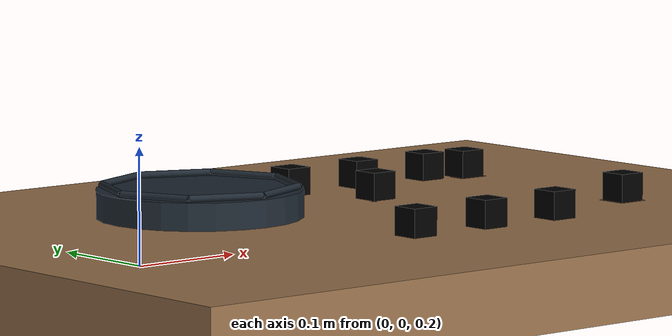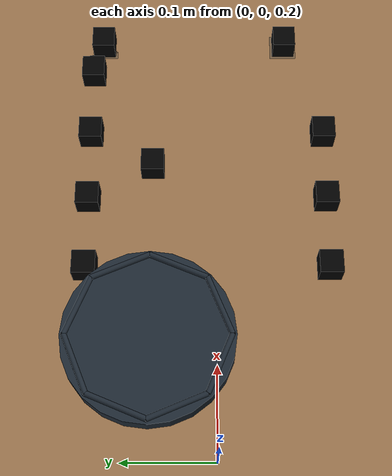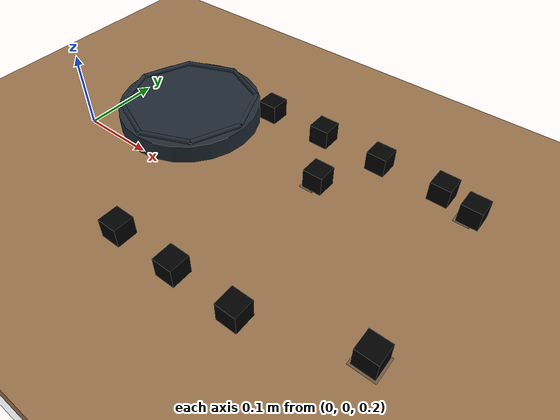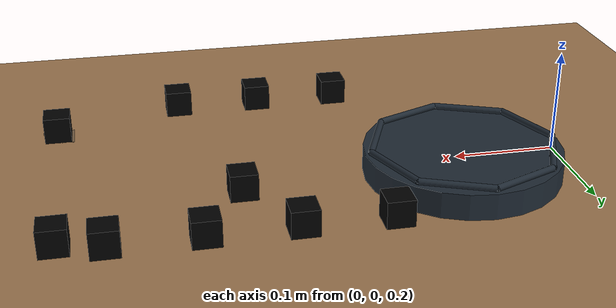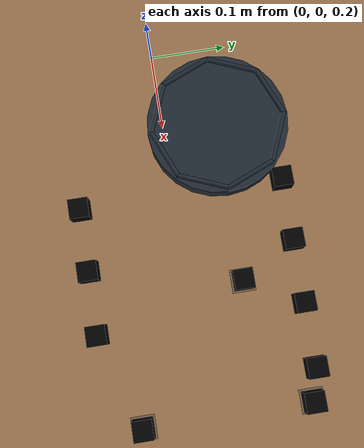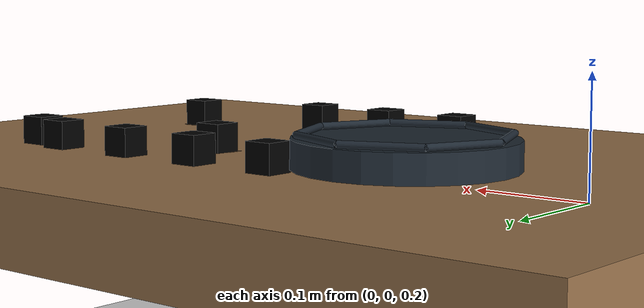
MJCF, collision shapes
<mujoco model="place_blocks_on_disk">
  <compiler meshdir="../../../meshes"/>

  <visual>
    <map znear="0.001"/>
  </visual>

  <asset>
    <mesh name="cube_blue_mesh" file="stack_color_blocks/blue_plastic_cube/blue_plastic_cube.obj" scale="0.5 0.5 0.5"/>
    <mesh name="cube_yellow_mesh" file="stack_color_blocks/yellow_plastic_cube/yellow_plastic_cube.obj" scale="0.5 0.5 0.5"/>
    <mesh name="cube_orange_mesh" file="stack_color_blocks/orange_plastic_cube/orange_plastic_cube.obj" scale="0.5 0.5 0.5"/>

    <material name="cube_blue_mat" rgba="0.10 0.35 0.95 1" reflectance="0.2"/>
    <material name="cube_yellow_mat" rgba="0.95 0.85 0.10 1" reflectance="0.2"/>
    <material name="cube_orange_mat" rgba="0.95 0.55 0.10 1" reflectance="0.2"/>
  </asset>

  <worldbody>
    <light name="demo_light" pos="0 0 1.5" dir="0 0 -1"/>
    <geom name="floor" type="plane" size="2 2 0.1" rgba="0.85 0.85 0.85 1"
          contype="0" conaffinity="0"/>

    <!-- Raised visual table for AIRBOT Play. The small cube pads below carry
         collision so the gripper can approach the cube sides without hitting
         a broad tabletop. Top surface z = 0.22 m. -->
    <body name="table" pos="0.18 0.04 0.19">
      <geom name="table_top" type="box" size="0.70 0.40 0.03" rgba="0.6 0.45 0.3 1"
            contype="1" conaffinity="1"/>
    </body>

    <body name="disk" pos="0.12 0.07 0.235" quat="0.70710678 0 0 0.70710678">
      <geom name="disk_col" type="cylinder" size="0.09 0.012" mass="0.08"
            friction="1.6 0.05 0.01" rgba="0.12 0.16 0.20 1" contype="1" conaffinity="1"/>
      <site name="disk_site" pos="0 0 0" size="0.004" rgba="1 0 1 0"/>
      <geom name="disk_vis" type="cylinder" size="0.09 0.012" rgba="0.12 0.16 0.20 1"
            contype="0" conaffinity="0" group="1"/>
      <!-- Low physical rim: the real tray retains blocks after release. -->
      <geom name="disk_rim_0" type="capsule" fromto="0.085 0 0.015 0.0601 0.0601 0.015" size="0.003" friction="1.6 0.05 0.01" rgba="0.12 0.16 0.20 1"/>
      <geom name="disk_rim_1" type="capsule" fromto="0.0601 0.0601 0.015 0 0.085 0.015" size="0.003" friction="1.6 0.05 0.01" rgba="0.12 0.16 0.20 1"/>
      <geom name="disk_rim_2" type="capsule" fromto="0 0.085 0.015 -0.0601 0.0601 0.015" size="0.003" friction="1.6 0.05 0.01" rgba="0.12 0.16 0.20 1"/>
      <geom name="disk_rim_3" type="capsule" fromto="-0.0601 0.0601 0.015 -0.085 0 0.015" size="0.003" friction="1.6 0.05 0.01" rgba="0.12 0.16 0.20 1"/>
      <geom name="disk_rim_4" type="capsule" fromto="-0.085 0 0.015 -0.0601 -0.0601 0.015" size="0.003" friction="1.6 0.05 0.01" rgba="0.12 0.16 0.20 1"/>
      <geom name="disk_rim_5" type="capsule" fromto="-0.0601 -0.0601 0.015 0 -0.085 0.015" size="0.003" friction="1.6 0.05 0.01" rgba="0.12 0.16 0.20 1"/>
      <geom name="disk_rim_6" type="capsule" fromto="0 -0.085 0.015 0.0601 -0.0601 0.015" size="0.003" friction="1.6 0.05 0.01" rgba="0.12 0.16 0.20 1"/>
      <geom name="disk_rim_7" type="capsule" fromto="0.0601 -0.0601 0.015 0.085 0 0.015" size="0.003" friction="1.6 0.05 0.01" rgba="0.12 0.16 0.20 1"/>
    </body>

    <geom name="cube_blue_pad" type="box" pos="0.32 0.07 0.21" size="0.015 0.015 0.01"
          rgba="0.45 0.36 0.26 1"/>
    <geom name="cube_orange_pad" type="box" pos="0.48 0.13 0.21" size="0.015 0.015 0.01"
          rgba="0.45 0.36 0.26 1"/>
    <geom name="cube_yellow_pad" type="box" pos="0.48 -0.08 0.21" size="0.015 0.015 0.01"
          rgba="0.45 0.36 0.26 1"/>

    <!-- Cube side = 0.025 m, center z = 0.22 + 0.0125 = 0.2325 m. -->
    <body name="cube_blue" pos="0.32 0.07 0.2325">
      <freejoint name="cube_blue_joint"/>
      <geom name="cube_blue_col" type="box" size="0.0125 0.0125 0.0125"
            mass="0.005" friction="1.5 0.05 0.01"
            rgba="0 0 0 0" contype="1" conaffinity="1"/>
      <geom name="cube_blue_vis" type="mesh" mesh="cube_blue_mesh" material="cube_blue_mat"
            density="0" contype="0" conaffinity="0" group="1"/>
      <site name="cube_blue_site" pos="0 0 0" size="0.004" rgba="1 0 0 0"/>
    </body>

    <body name="cube_orange" pos="0.48 0.13 0.2325">
      <freejoint name="cube_orange_joint"/>
      <geom name="cube_orange_col" type="box" size="0.0125 0.0125 0.0125"
            mass="0.005" friction="1.5 0.05 0.01"
            rgba="0 0 0 0" contype="1" conaffinity="1"/>
      <geom name="cube_orange_vis" type="mesh" mesh="cube_orange_mesh" material="cube_orange_mat"
            density="0" contype="0" conaffinity="0" group="1"/>
      <site name="cube_orange_site" pos="0 0 0" size="0.004" rgba="1 0 0 0"/>
    </body>

    <body name="cube_yellow" pos="0.48 -0.08 0.2325">
      <freejoint name="cube_yellow_joint"/>
      <geom name="cube_yellow_col" type="box" size="0.0125 0.0125 0.0125"
            mass="0.005" friction="1.5 0.05 0.01"
            rgba="0 0 0 0" contype="1" conaffinity="1"/>
      <geom name="cube_yellow_vis" type="mesh" mesh="cube_yellow_mesh" material="cube_yellow_mat"
            density="0" contype="0" conaffinity="0" group="1"/>
      <site name="cube_yellow_site" pos="0 0 0" size="0.004" rgba="1 0 0 0"/>
    </body>

    <body name="cube_blue_2" pos="0.20 0.14 0.2325"><freejoint name="cube_blue_2_joint"/><geom name="cube_blue_2_col" type="box" size="0.0125 0.0125 0.0125" mass="0.005" friction="1.5 0.05 0.01" rgba="0 0 0 0"/><geom name="cube_blue_2_vis" type="mesh" mesh="cube_blue_mesh" material="cube_blue_mat" density="0" contype="0" conaffinity="0" group="1"/></body>
    <body name="cube_yellow_2" pos="0.28 0.14 0.2325"><freejoint name="cube_yellow_2_joint"/><geom name="cube_yellow_2_col" type="box" size="0.0125 0.0125 0.0125" mass="0.005" friction="1.5 0.05 0.01" rgba="0 0 0 0"/><geom name="cube_yellow_2_vis" type="mesh" mesh="cube_yellow_mesh" material="cube_yellow_mat" density="0" contype="0" conaffinity="0" group="1"/></body>
    <body name="cube_orange_2" pos="0.36 0.14 0.2325"><freejoint name="cube_orange_2_joint"/><geom name="cube_orange_2_col" type="box" size="0.0125 0.0125 0.0125" mass="0.005" friction="1.5 0.05 0.01" rgba="0 0 0 0"/><geom name="cube_orange_2_vis" type="mesh" mesh="cube_orange_mesh" material="cube_orange_mat" density="0" contype="0" conaffinity="0" group="1"/></body>
    <body name="cube_blue_3" pos="0.20 -0.12 0.2325"><freejoint name="cube_blue_3_joint"/><geom name="cube_blue_3_col" type="box" size="0.0125 0.0125 0.0125" mass="0.005" friction="1.5 0.05 0.01" rgba="0 0 0 0"/><geom name="cube_blue_3_vis" type="mesh" mesh="cube_blue_mesh" material="cube_blue_mat" density="0" contype="0" conaffinity="0" group="1"/></body>
    <body name="cube_yellow_3" pos="0.28 -0.12 0.2325"><freejoint name="cube_yellow_3_joint"/><geom name="cube_yellow_3_col" type="box" size="0.0125 0.0125 0.0125" mass="0.005" friction="1.5 0.05 0.01" rgba="0 0 0 0"/><geom name="cube_yellow_3_vis" type="mesh" mesh="cube_yellow_mesh" material="cube_yellow_mat" density="0" contype="0" conaffinity="0" group="1"/></body>
    <body name="cube_orange_3" pos="0.36 -0.12 0.2325"><freejoint name="cube_orange_3_joint"/><geom name="cube_orange_3_col" type="box" size="0.0125 0.0125 0.0125" mass="0.005" friction="1.5 0.05 0.01" rgba="0 0 0 0"/><geom name="cube_orange_3_vis" type="mesh" mesh="cube_orange_mesh" material="cube_orange_mat" density="0" contype="0" conaffinity="0" group="1"/></body>
    <body name="cube_blue_4" pos="0.44 0.14 0.2325"><freejoint name="cube_blue_4_joint"/><geom name="cube_blue_4_col" type="box" size="0.0125 0.0125 0.0125" mass="0.005" friction="1.5 0.05 0.01" rgba="0 0 0 0"/><geom name="cube_blue_4_vis" type="mesh" mesh="cube_blue_mesh" material="cube_blue_mat" density="0" contype="0" conaffinity="0" group="1"/></body>

    <camera name="env1_cam" pos="0.10 -0.75 0.60" xyaxes="1 0 0 0 0.447 0.894" fovy="45"/>
    <camera name="env0_cam" pos="0.8 0 0.55" xyaxes="0 1 0 -0.406 0 0.914" fovy="45"/>
  </worldbody>
</mujoco>
